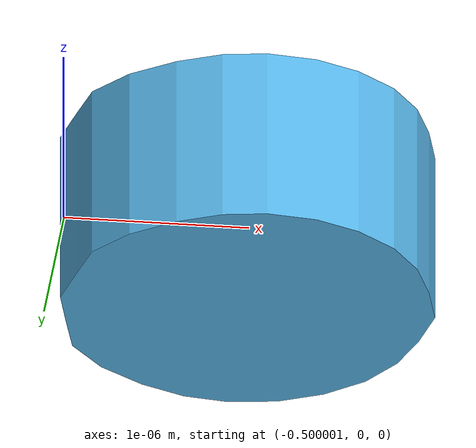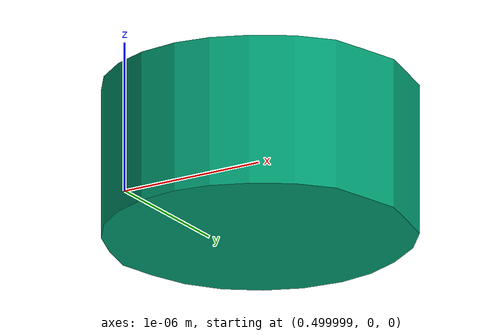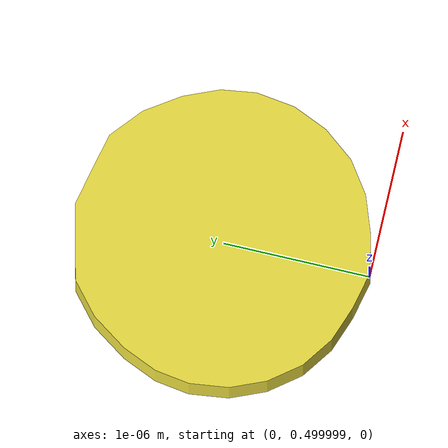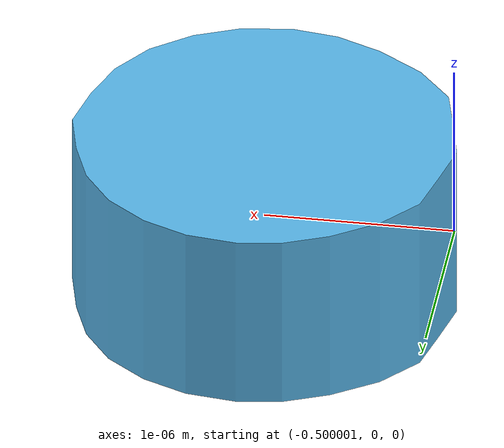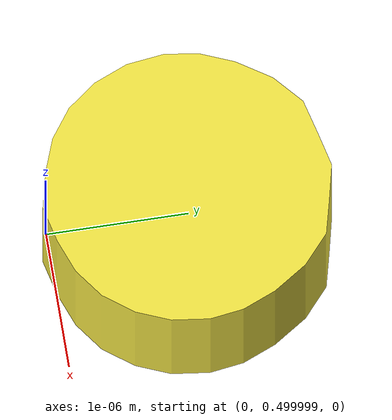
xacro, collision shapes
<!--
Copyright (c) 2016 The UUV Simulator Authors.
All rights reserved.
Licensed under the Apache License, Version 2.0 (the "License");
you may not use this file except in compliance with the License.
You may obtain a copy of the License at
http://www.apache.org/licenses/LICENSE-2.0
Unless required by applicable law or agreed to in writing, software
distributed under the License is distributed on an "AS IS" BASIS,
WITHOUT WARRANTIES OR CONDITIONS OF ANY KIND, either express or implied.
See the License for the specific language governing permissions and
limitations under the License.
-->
<?xml version="1.0"?>

<robot name="rexrov" xmlns:xacro="http://www.ros.org/wiki/xacro" >
  <xacro:include filename="$(find hybrid_glider_gazebo_ros_plugins)/urdf/thruster_snippets.xacro"/>
  <xacro:property name="prop_mesh_file" value="file://$(find hybrid_glider_descriptions)/mesh/prop.dae"/>

  <xacro:macro name="box_inertial" params="x y z mass *origin">
    <inertial>
      <mass value="${mass}" />
      <xacro:insert_block name="origin" />
      <inertia ixx="${0.0833333 * mass * (y*y + z*z)}" ixy="0.0" ixz="0.0"
             iyy="${0.0833333 * mass * (x*x + z*z)}" iyz="0.0"
             izz="${0.0833333 * mass * (x*x + y*y)}" />
    </inertial>
  </xacro:macro>

  <link name="vehicle/base_link">
    <inertial>
      <mass value="10"/>
      <origin xyz="0 0 0"/>
      <inertia ixx="0.01" ixy="0.0" ixz="0.0" iyy="0.01" iyz="0.0" izz="0.01"/>
    </inertial>
  </link>

  <gazebo>
    <plugin name="hybrid_glider_plugin" filename="libhybrid_glider_underwater_object_ros_plugin.so">
      <fluid_density>1028.0</fluid_density>
      <flow_velocity_topic>hydrodynamics/current_velocity</flow_velocity_topic>
      <debug>0</debug>

      <link name="vehicle/base_link">
          <neutrally_buoyant>0</neutrally_buoyant>
          <volume>0.009727626</volume>
          <box>
              <width>1.0</width>
              <length>1.0</length>
              <height>1.0</height>
          </box>
          <center_of_buoyancy>0 0 0</center_of_buoyancy>
          <hydrodynamic_model>
            <type>sphere</type>
            <radius>0.1</radius>
          </hydrodynamic_model>
      </link>
    </plugin>
  </gazebo>

  <!-- Adding thrusters -->
  <xacro:generic_thruster_macro
    namespace="vehicle"
    thruster_id="0"
    mesh_filename="${prop_mesh_file}">
    <origin xyz="-0.5 0 0" rpy="0 0 0"/>
    <dynamics>
      <type>FirstOrder</type>
      <timeConstant>0.01</timeConstant>
    </dynamics>

    <xacro:thruster_cf_basic_macro
      rotor_constant="0.001"/>
  </xacro:generic_thruster_macro>

  <xacro:generic_thruster_macro
    namespace="vehicle"
    thruster_id="1"
    mesh_filename="${prop_mesh_file}">
    <origin xyz="0.5 0 0" rpy="0 0 0"/>
    <dynamics>
      <type>FirstOrder</type>
      <timeConstant>0.01</timeConstant>
    </dynamics>

    <xacro:thruster_cf_dead_zone_macro
      rotor_constant_l="0.001"
      rotor_constant_r="0.001"
      delta_l="-0.01"
      delta_r="0.01"/>
  </xacro:generic_thruster_macro>

  <xacro:generic_thruster_macro
    namespace="vehicle"
    thruster_id="2"
    mesh_filename="${prop_mesh_file}">
    <origin xyz="0 0.5 0" rpy="0 0 0"/>
    <dynamics>
      <type>FirstOrder</type>
      <timeConstant>0.01</timeConstant>
    </dynamics>

    <xacro:thruster_cf_linear_interp_macro
      input_values="-0.1 0 0.1"
      output_values="-0.01 0 0.01"/>
  </xacro:generic_thruster_macro>
</robot>

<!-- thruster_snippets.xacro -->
<robot xmlns:xacro="http://www.ros.org/wiki/xacro">

  <!-- ROTOR DYNAMICS MACROS -->

  <!-- First order dynamics -->

  <xacro:macro name="rotor_dyn_first_order_macro" params="time_constant">
    <dynamics>
      <type>FirstOrder</type>
      <timeConstant>${time_constant}</timeConstant>
    </dynamics>
  </xacro:macro>

  <!--
    MACROS FOR CONVERSION FUNCTIONS BETWEEN ROTOR'S ANG. VELOCITY AND
    THRUSTER FORCE
  -->

  <!--
    1) Basic curve
      Input: x
      Output: thrust
      Function: thrust = rotorConstant * x * abs(x)
  -->
  <xacro:macro name="thruster_cf_basic_macro"
    params="rotor_constant">
    <conversion>
      <type>Basic</type>
      <rotorConstant>${rotor_constant}</rotorConstant>
    </conversion>
  </xacro:macro>

  <xacro:macro name="thruster_cf_dead_zone_macro"
    params="rotor_constant_l
            rotor_constant_r
            delta_l
            delta_r">
    <conversion>
      <type>Bessa</type>
      <rotorConstantL>${rotor_constant_l}</rotorConstantL>
      <rotorConstantR>${rotor_constant_r}</rotorConstantR>
      <deltaL>${delta_l}</deltaL>
      <deltaR>${delta_r}</deltaR>
    </conversion>
  </xacro:macro>

  <xacro:macro name="thruster_cf_linear_interp_macro"
    params="input_values
            output_values">
    <conversion>
      <type>LinearInterp</type>
      <inputValues>${input_values}</inputValues>
      <outputValues>${output_values}</outputValues>
    </conversion>
  </xacro:macro>

  <!-- THRUSTER MODULE MACROS  -->

  <xacro:macro name="generic_thruster_macro"
    params="namespace
            thruster_id
            *origin
            mesh_filename
            *dynamics
            *conversion">
    <joint name="${namespace}/thruster_${thruster_id}_joint" type="continuous">
      <xacro:insert_block name="origin"/>
      <axis xyz="1 0 0"/>
      <parent link="${namespace}/base_link"/>
      <child link="${namespace}/thruster_${thruster_id}"/>
    </joint>

    <link name="${namespace}/thruster_${thruster_id}">
      <xacro:box_inertial x="0" y="0" z="0" mass="0.001">
        <origin xyz="0 0 0" rpy="0 0 0"/>
      </xacro:box_inertial>
      <visual>
        <origin rpy="0 0 0" xyz="0 0 0"/>
        <geometry>
          <mesh filename="${mesh_filename}" scale="1 1 1"/>
        </geometry>
      </visual>
      <collision>
        <!-- todo: gazebo needs a collision volume or it will ignore the pose of
           the joint that leads to this link (and assume it to be the identity) -->
        <geometry>
          <cylinder length="0.000001" radius="0.000001"/>
        </geometry>
        <origin xyz="0 0 0" rpy="0 0 0"/>
      </collision>
    </link>

    <gazebo>
      <plugin name="${namespace}_${thruster_id}_thruster_model" filename="libhybrid_glider_thruster_ros_plugin.so">
        <linkName>${namespace}/thruster_${thruster_id}</linkName>
        <jointName>${namespace}/thruster_${thruster_id}_joint</jointName>
        <thrusterID>${thruster_id}</thrusterID>
        <xacro:insert_block name="dynamics"/>
        <xacro:insert_block name="conversion"/>
      </plugin>
    </gazebo>

    <gazebo reference="${namespace}/thruster_${thruster_id}">
      <selfCollide>false</selfCollide>
    </gazebo>
  </xacro:macro>

  <!--
    Thruster model with first order dynamic model for the rotor dynamics
    and a proportional non-linear steady-state conversion from the rotor's
    angular velocity to output thrust force
  -->

  <xacro:macro name="thruster_module_first_order_basic_fcn_macro"
      params="namespace
              thruster_id
              *origin
              mesh_filename
              dyn_time_constant
              rotor_constant">
    <xacro:generic_thruster_macro
      namespace="${namespace}"
      thruster_id="${thruster_id}"
      mesh_filename="${mesh_filename}">
      <xacro:insert_block name="origin"/>
      <xacro:rotor_dyn_first_order_macro time_constant="${dyn_time_constant}"/>
      <xacro:thruster_cf_basic_macro rotor_constant="${rotor_constant}"/>
    </xacro:generic_thruster_macro>
  </xacro:macro>

</robot>
